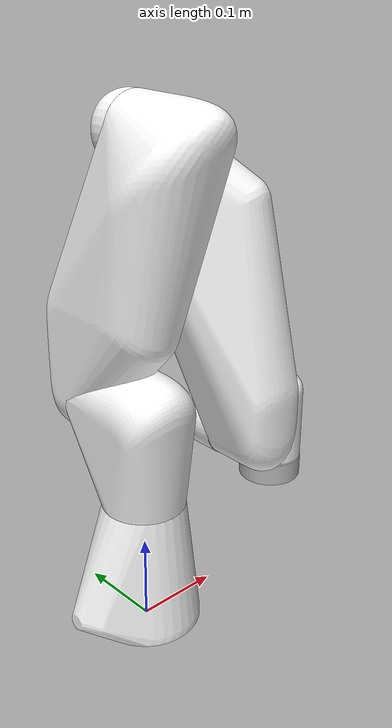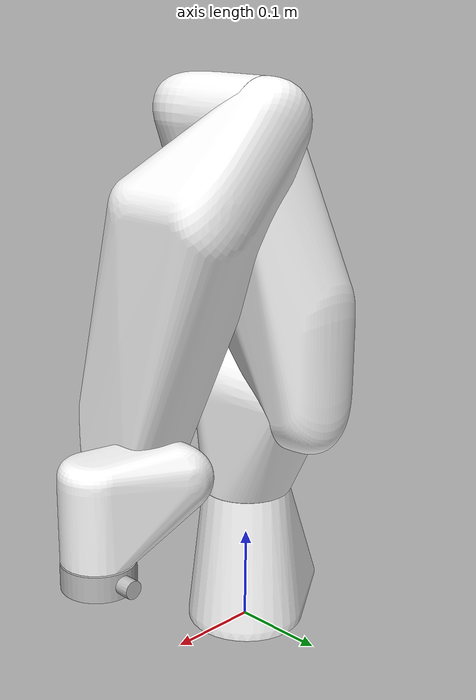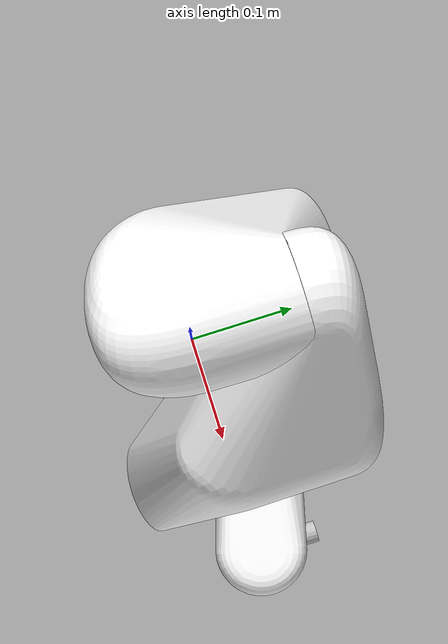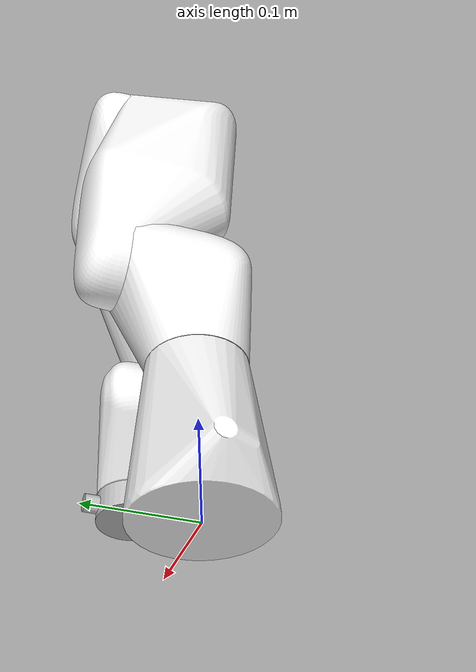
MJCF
<mujoco model="xarm5">
  <compiler angle="radian" autolimits="true"
            meshdir="@XARM_DESCRIPTION_SHARE@/meshes/xarm5/visual"/>

  <option integrator="implicitfast"/>

  <asset>
    <material name="white" rgba="1 1 1 1"/>
    <mesh name="link_base" file="link_base.stl"/>
    <mesh name="link1" file="link1.stl"/>
    <mesh name="link2" file="link2.stl"/>
    <mesh name="link3" file="link3.stl"/>
    <mesh name="link4" file="link4.stl"/>
    <mesh name="link5" file="link5.stl"/>
    <mesh name="end_tool" file="@XARM_DESCRIPTION_SHARE@/meshes/end_tool/collision/end_tool.stl"/>
  </asset>

  <default>
    <default class="xarm5">
      <geom type="mesh" material="white" group="1"/>
      <joint axis="0 0 1" armature="0.1" range="-6.28319 6.28319" frictionloss="1"/>
      <default class="size1">
        <joint damping="10"/>
      </default>
      <default class="size2">
        <joint damping="5"/>
      </default>
      <default class="size3">
        <joint damping="2"/>
      </default>
      <site size="0.001" rgba="1 0 0 1" group="4"/>
    </default>
  </default>

  <worldbody>
    <body name="link_base" childclass="xarm5">
      <geom type="mesh" rgba="1 1 1 1" mesh="link_base"/>
      <body name="link1" pos="0 0 0.267">
        <inertial pos="0.00013 0.0294 -0.01239" quat="0.976897 -0.212169 0.00886257 0.0240422" mass="2.3849" diaginertia="0.00570618 0.00530019 0.00294197"/>
        <joint name="joint1" pos="0 0 0" axis="0 0 1" range="-6.28319 6.28319" actuatorfrcrange="-50 50" damping="10" frictionloss="1"/>
        <geom type="mesh" rgba="1 1 1 1" mesh="link1"/>
        <body name="link2" quat="0.707105 -0.707108 0 0">
          <inertial pos="0.03788 -0.2254 0.03447" quat="0.632994 0.750527 0.187997 -0.0261719" mass="2.164" diaginertia="0.0289206 0.0277808 0.00354667"/>
          <joint name="joint2" pos="0 0 0" axis="0 0 1" range="-2.059 2.0944" actuatorfrcrange="-50 50" damping="10" frictionloss="1"/>
          <geom type="mesh" rgba="1 1 1 1" mesh="link2"/>
          <body name="link3" pos="0.0535 -0.2845 0">
            <inertial pos="0.06883 0.22985 0.00102" quat="0.75411 0.568954 -0.247614 0.215165" mass="2.121" diaginertia="0.0382682 0.0373731 0.00349086"/>
            <joint name="joint3" pos="0 0 0" axis="0 0 1" range="-3.927 0.19198" actuatorfrcrange="-30 30" damping="5" frictionloss="1"/>
            <geom type="mesh" rgba="1 1 1 1" mesh="link3"/>
            <body name="link4" pos="0.0775 0.3425 0">
              <inertial pos="0.06489 0.03122 0.00319" quat="-0.224519 0.773365 0.156356 0.571884" mass="1.3169" diaginertia="0.00240435 0.00212066 0.00106127"/>
              <joint name="joint4" pos="0 0 0" axis="0 0 1" range="-1.69297 3.14159" actuatorfrcrange="-20 20" damping="3" frictionloss="1"/>
              <geom type="mesh" rgba="1 1 1 1" mesh="link4"/>
              <body name="link5" pos="0.076 0.097 0" quat="0.707105 -0.707108 0 0">
                <inertial pos="0 -0.00677 -0.01098" quat="0.487612 0.512088 -0.512088 0.487612" mass="0.17" diaginertia="0.000132176 9.3e-05 5.85236e-05"/>
                <joint name="joint5" pos="0 0 0" axis="0 0 1" range="-6.28319 6.28319" actuatorfrcrange="-20 20" damping="3" frictionloss="1"/>
                <geom type="mesh" rgba="0.753 0.753 0.753 1" mesh="end_tool"/>
                <site name="attachment_site"/>
              </body>
            </body>
          </body>
        </body>
      </body>
    </body>
  </worldbody>

  <actuator>
    <motor name="act1" joint="joint1" class="size1"/>
    <motor name="act2" joint="joint2" class="size1"/>
    <motor name="act3" joint="joint3" class="size2"/>
    <motor name="act4" joint="joint4" class="size2"/>
    <motor name="act5" joint="joint5" class="size2"/>
  </actuator>

  <sensor>
    <force name="EEForceSensor_fsensor" site="attachment_site"/>
    <torque name="EEForceSensor_tsensor" site="attachment_site"/>
  </sensor>

  <keyframe>
    <key name="home" qpos="0 0 0 .909 0 1.15644 0" ctrl="0 -.247 0 .909 0 1.15644 0"/>
  </keyframe>
</mujoco>
